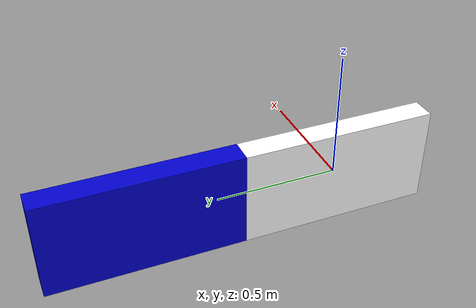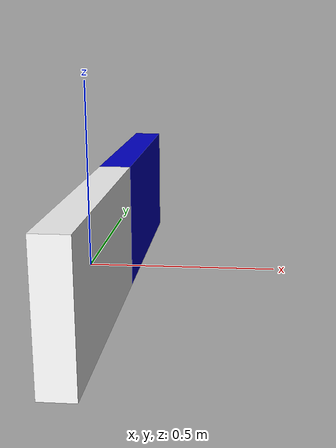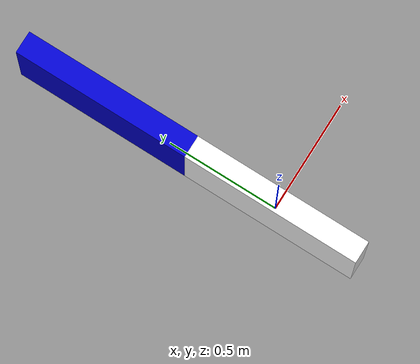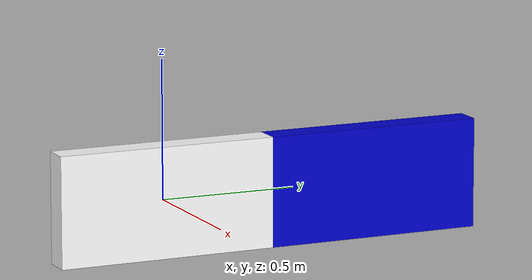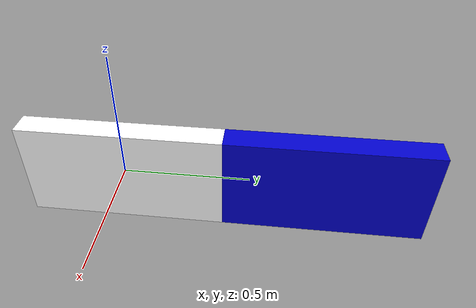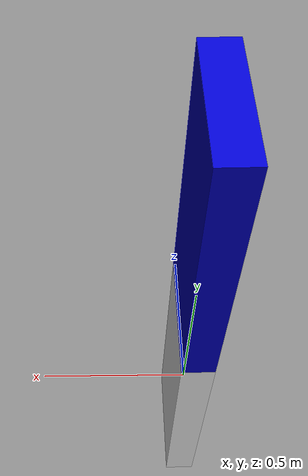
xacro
<?xml version="1.0"?>
<robot name="sim">

<material name="blue">
    <color rgba="0 0 0.8 1"/>
</material>
<material name="white">
    <color rgba="1 1 1 1"/>
</material>

    <link name="base_link">
        <visual>
            <geometry>
                <box size=".1 .8 .4"/>
            </geometry>

            <material name="white"/>
        </visual>
    </link>

    <link name="left_top">
        <visual>
            <geometry>
                <box size=".1 .8 .4"/>
            </geometry>
            <material name="blue"/>
            <origin xyz="0 .4 0" />
        </visual>
    </link>

   <joint name="left_connection" type="continuous">
        <parent link="base_link"/>
        <child link="left_top"/>
        <origin xyz="0 .4 0"/>
        <axis xyz="0 0 1" rpy="1.57 0 0" />
        <calibration rising="2.0"/>
    </joint>
</robot>
